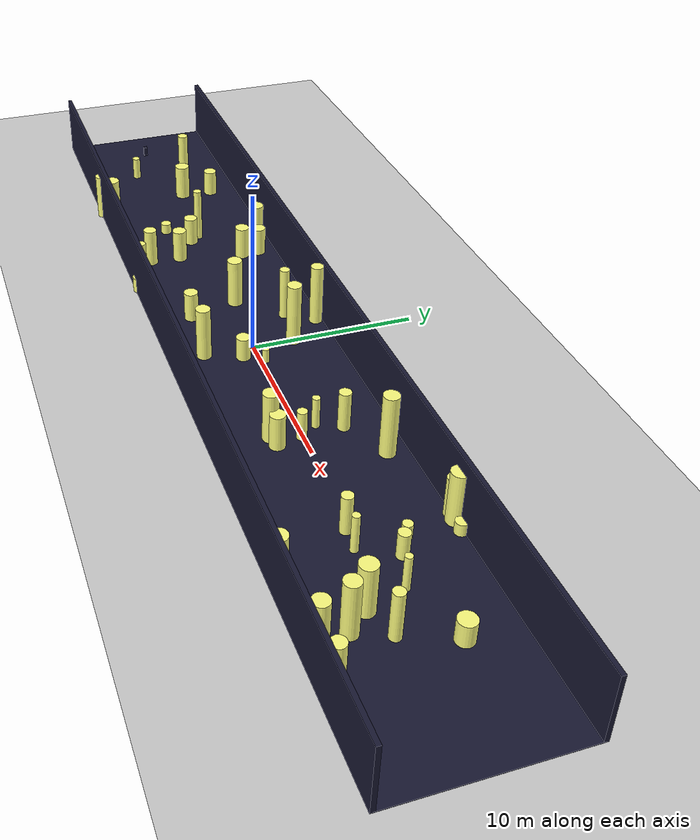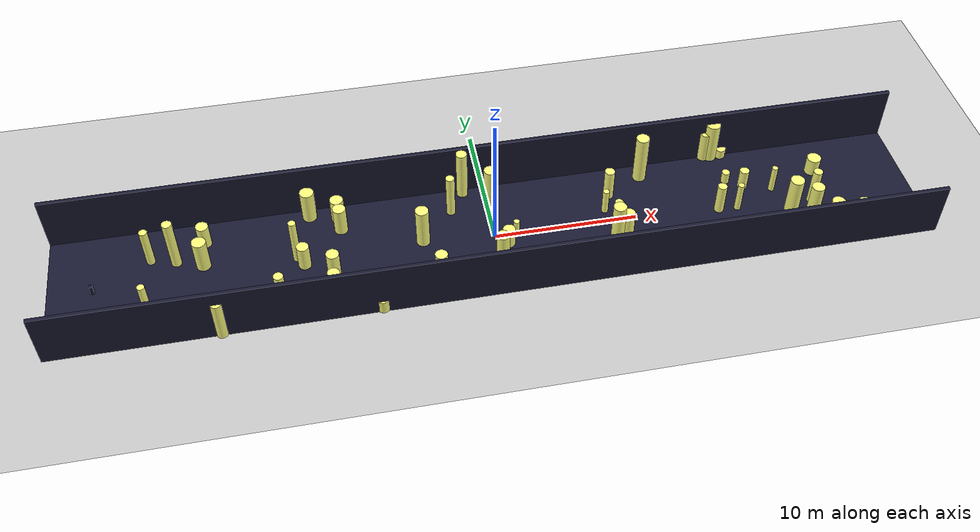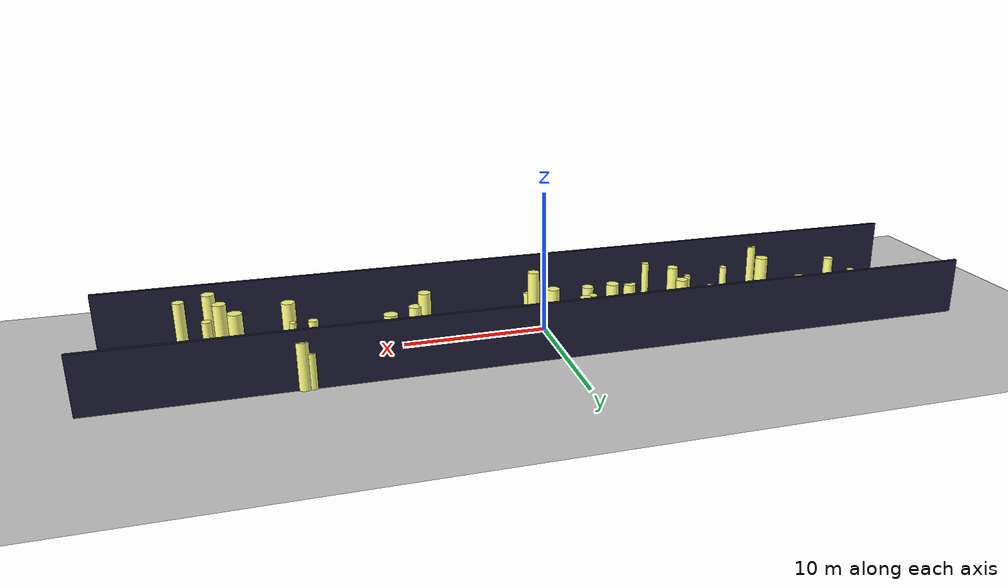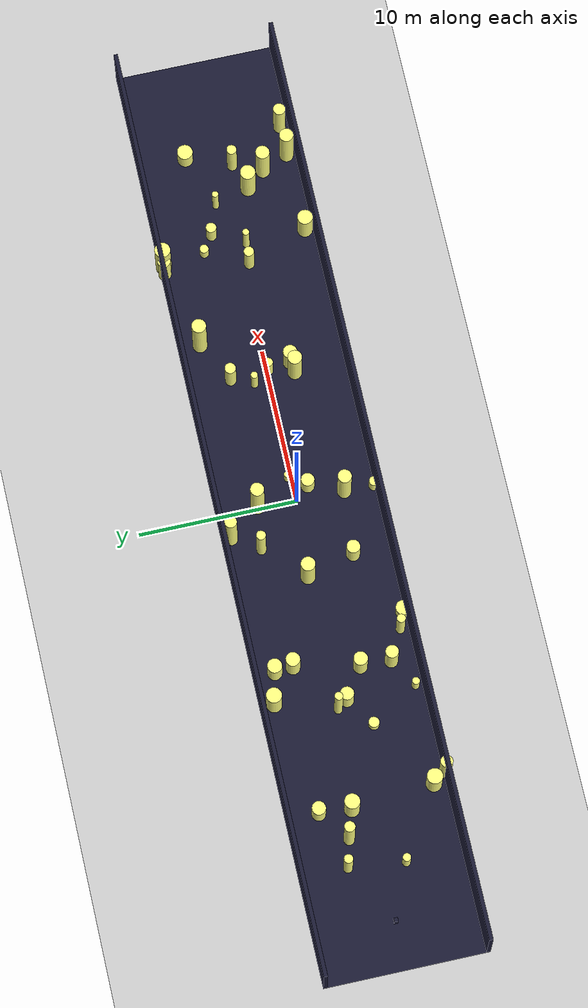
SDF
<?xml version="1.0"?>
<sdf version="1.4">
  <world name="default">
    <gui>
      <camera name="user_camera">
        <pose>-20 -30 40 0 0.66 0.83</pose>
      </camera>
    </gui>
    <include>
      <uri>model://ground_plane</uri>
    </include>
    <include>
      <uri>model://sun</uri>
    </include>
    <scene>
      <shadows>0</shadows>
    </scene>
    <model name="forest">
      <static>true</static>
      <link name="cylinder0">
        <pose>-10.316566731697213 2.5775636685798595 1.078666427885016 0 0 0 </pose>
        <visual name="visual">
          <geometry>
            <cylinder>
              <radius>0.44967204013859363</radius>
              <length>2.157332855770032</length>
            </cylinder>
          </geometry>
          <material>
            <ambient>0.6 0.6 0.6 1</ambient>
            <diffuse>1 1 0.5 1</diffuse>
            <specular>0 0 0</specular>
            <emissive>0 0 0 1</emissive>
          </material>
        </visual>
        <collision name="collision">
          <geometry>
            <cylinder>
              <radius>0.44967204013859363</radius>
              <length>2.157332855770032</length>
            </cylinder>
          </geometry>
          <max_contacts>0</max_contacts>
        </collision>
      </link>
      <link name="cylinder1">
        <pose>8.668529007671374 -0.09326250588529916 0.9110988132144789 0 0 0 </pose>
        <visual name="visual">
          <geometry>
            <cylinder>
              <radius>0.29104572256328487</radius>
              <length>1.8221976264289579</length>
            </cylinder>
          </geometry>
          <material>
            <ambient>0.6 0.6 0.6 1</ambient>
            <diffuse>1 1 0.5 1</diffuse>
            <specular>0 0 0</specular>
            <emissive>0 0 0 1</emissive>
          </material>
        </visual>
        <collision name="collision">
          <geometry>
            <cylinder>
              <radius>0.29104572256328487</radius>
              <length>1.8221976264289579</length>
            </cylinder>
          </geometry>
          <max_contacts>0</max_contacts>
        </collision>
      </link>
      <link name="cylinder2">
        <pose>22.547265370313895 -4.34868033882248 1.7497839510676827 0 0 0 </pose>
        <visual name="visual">
          <geometry>
            <cylinder>
              <radius>0.44433691289763066</radius>
              <length>3.4995679021353654</length>
            </cylinder>
          </geometry>
          <material>
            <ambient>0.6 0.6 0.6 1</ambient>
            <diffuse>1 1 0.5 1</diffuse>
            <specular>0 0 0</specular>
            <emissive>0 0 0 1</emissive>
          </material>
        </visual>
        <collision name="collision">
          <geometry>
            <cylinder>
              <radius>0.44433691289763066</radius>
              <length>3.4995679021353654</length>
            </cylinder>
          </geometry>
          <max_contacts>0</max_contacts>
        </collision>
      </link>
      <link name="cylinder3">
        <pose>-2.599174663075271 2.83698610684349 1.6803450122999335 0 0 0 </pose>
        <visual name="visual">
          <geometry>
            <cylinder>
              <radius>0.30045205482047166</radius>
              <length>3.360690024599867</length>
            </cylinder>
          </geometry>
          <material>
            <ambient>0.6 0.6 0.6 1</ambient>
            <diffuse>1 1 0.5 1</diffuse>
            <specular>0 0 0</specular>
            <emissive>0 0 0 1</emissive>
          </material>
        </visual>
        <collision name="collision">
          <geometry>
            <cylinder>
              <radius>0.30045205482047166</radius>
              <length>3.360690024599867</length>
            </cylinder>
          </geometry>
          <max_contacts>0</max_contacts>
        </collision>
      </link>
      <link name="cylinder4">
        <pose>-19.565915942473094 3.0474721258093176 0.8862405152047648 0 0 0 </pose>
        <visual name="visual">
          <geometry>
            <cylinder>
              <radius>0.4329847621168335</radius>
              <length>1.7724810304095295</length>
            </cylinder>
          </geometry>
          <material>
            <ambient>0.6 0.6 0.6 1</ambient>
            <diffuse>1 1 0.5 1</diffuse>
            <specular>0 0 0</specular>
            <emissive>0 0 0 1</emissive>
          </material>
        </visual>
        <collision name="collision">
          <geometry>
            <cylinder>
              <radius>0.4329847621168335</radius>
              <length>1.7724810304095295</length>
            </cylinder>
          </geometry>
          <max_contacts>0</max_contacts>
        </collision>
      </link>
      <link name="cylinder5">
        <pose>17.206558939826508 -0.5645370079336409 1.1529184274352597 0 0 0 </pose>
        <visual name="visual">
          <geometry>
            <cylinder>
              <radius>0.21622927189896674</radius>
              <length>2.3058368548705195</length>
            </cylinder>
          </geometry>
          <material>
            <ambient>0.6 0.6 0.6 1</ambient>
            <diffuse>1 1 0.5 1</diffuse>
            <specular>0 0 0</specular>
            <emissive>0 0 0 1</emissive>
          </material>
        </visual>
        <collision name="collision">
          <geometry>
            <cylinder>
              <radius>0.21622927189896674</radius>
              <length>2.3058368548705195</length>
            </cylinder>
          </geometry>
          <max_contacts>0</max_contacts>
        </collision>
      </link>
      <link name="cylinder6">
        <pose>-4.917327672397054 0.42003232697163284 1.558526704027693 0 0 0 </pose>
        <visual name="visual">
          <geometry>
            <cylinder>
              <radius>0.4543481166086107</radius>
              <length>3.117053408055386</length>
            </cylinder>
          </geometry>
          <material>
            <ambient>0.6 0.6 0.6 1</ambient>
            <diffuse>1 1 0.5 1</diffuse>
            <specular>0 0 0</specular>
            <emissive>0 0 0 1</emissive>
          </material>
        </visual>
        <collision name="collision">
          <geometry>
            <cylinder>
              <radius>0.4543481166086107</radius>
              <length>3.117053408055386</length>
            </cylinder>
          </geometry>
          <max_contacts>0</max_contacts>
        </collision>
      </link>
      <link name="cylinder7">
        <pose>20.16261422978085 0.7613990138977549 1.0708264691679408 0 0 0 </pose>
        <visual name="visual">
          <geometry>
            <cylinder>
              <radius>0.2034598654079142</radius>
              <length>2.1416529383358816</length>
            </cylinder>
          </geometry>
          <material>
            <ambient>0.6 0.6 0.6 1</ambient>
            <diffuse>1 1 0.5 1</diffuse>
            <specular>0 0 0</specular>
            <emissive>0 0 0 1</emissive>
          </material>
        </visual>
        <collision name="collision">
          <geometry>
            <cylinder>
              <radius>0.2034598654079142</radius>
              <length>2.1416529383358816</length>
            </cylinder>
          </geometry>
          <max_contacts>0</max_contacts>
        </collision>
      </link>
      <link name="cylinder8">
        <pose>8.930649991744097 -1.5490371389218005 1.0884455812674019 0 0 0 </pose>
        <visual name="visual">
          <geometry>
            <cylinder>
              <radius>0.44533025122765835</radius>
              <length>2.1768911625348037</length>
            </cylinder>
          </geometry>
          <material>
            <ambient>0.6 0.6 0.6 1</ambient>
            <diffuse>1 1 0.5 1</diffuse>
            <specular>0 0 0</specular>
            <emissive>0 0 0 1</emissive>
          </material>
        </visual>
        <collision name="collision">
          <geometry>
            <cylinder>
              <radius>0.44533025122765835</radius>
              <length>2.1768911625348037</length>
            </cylinder>
          </geometry>
          <max_contacts>0</max_contacts>
        </collision>
      </link>
      <link name="cylinder9">
        <pose>-9.38529119967953 -4.366331584958429 1.3448369178150306 0 0 0 </pose>
        <visual name="visual">
          <geometry>
            <cylinder>
              <radius>0.2702699678972586</radius>
              <length>2.689673835630061</length>
            </cylinder>
          </geometry>
          <material>
            <ambient>0.6 0.6 0.6 1</ambient>
            <diffuse>1 1 0.5 1</diffuse>
            <specular>0 0 0</specular>
            <emissive>0 0 0 1</emissive>
          </material>
        </visual>
        <collision name="collision">
          <geometry>
            <cylinder>
              <radius>0.2702699678972586</radius>
              <length>2.689673835630061</length>
            </cylinder>
          </geometry>
          <max_contacts>0</max_contacts>
        </collision>
      </link>
      <link name="cylinder10">
        <pose>21.785906315387912 -2.630112548244589 0.7026847913110315 0 0 0 </pose>
        <visual name="visual">
          <geometry>
            <cylinder>
              <radius>0.3418374910625036</radius>
              <length>1.405369582622063</length>
            </cylinder>
          </geometry>
          <material>
            <ambient>0.6 0.6 0.6 1</ambient>
            <diffuse>1 1 0.5 1</diffuse>
            <specular>0 0 0</specular>
            <emissive>0 0 0 1</emissive>
          </material>
        </visual>
        <collision name="collision">
          <geometry>
            <cylinder>
              <radius>0.3418374910625036</radius>
              <length>1.405369582622063</length>
            </cylinder>
          </geometry>
          <max_contacts>0</max_contacts>
        </collision>
      </link>
      <link name="cylinder11">
        <pose>-11.301748242846694 -1.5206114560220598 0.3145789824836943 0 0 0 </pose>
        <visual name="visual">
          <geometry>
            <cylinder>
              <radius>0.25054294470113136</radius>
              <length>0.6291579649673886</length>
            </cylinder>
          </geometry>
          <material>
            <ambient>0.6 0.6 0.6 1</ambient>
            <diffuse>1 1 0.5 1</diffuse>
            <specular>0 0 0</specular>
            <emissive>0 0 0 1</emissive>
          </material>
        </visual>
        <collision name="collision">
          <geometry>
            <cylinder>
              <radius>0.25054294470113136</radius>
              <length>0.6291579649673886</length>
            </cylinder>
          </geometry>
          <max_contacts>0</max_contacts>
        </collision>
      </link>
      <link name="cylinder12">
        <pose>-0.06298509844897993 -4.827632712401825 0.5600978412357575 0 0 0 </pose>
        <visual name="visual">
          <geometry>
            <cylinder>
              <radius>0.29530544476982584</radius>
              <length>1.120195682471515</length>
            </cylinder>
          </geometry>
          <material>
            <ambient>0.6 0.6 0.6 1</ambient>
            <diffuse>1 1 0.5 1</diffuse>
            <specular>0 0 0</specular>
            <emissive>0 0 0 1</emissive>
          </material>
        </visual>
        <collision name="collision">
          <geometry>
            <cylinder>
              <radius>0.29530544476982584</radius>
              <length>1.120195682471515</length>
            </cylinder>
          </geometry>
          <max_contacts>0</max_contacts>
        </collision>
      </link>
      <link name="cylinder13">
        <pose>-13.506514832737343 0.4634382577562075 1.7831611392127953 0 0 0 </pose>
        <visual name="visual">
          <geometry>
            <cylinder>
              <radius>0.25538302278779307</radius>
              <length>3.5663222784255906</length>
            </cylinder>
          </geometry>
          <material>
            <ambient>0.6 0.6 0.6 1</ambient>
            <diffuse>1 1 0.5 1</diffuse>
            <specular>0 0 0</specular>
            <emissive>0 0 0 1</emissive>
          </material>
        </visual>
        <collision name="collision">
          <geometry>
            <cylinder>
              <radius>0.25538302278779307</radius>
              <length>3.5663222784255906</length>
            </cylinder>
          </geometry>
          <max_contacts>0</max_contacts>
        </collision>
      </link>
      <link name="cylinder14">
        <pose>-10.408807901734695 3.7261703488506352 0.9406027230277274 0 0 0 </pose>
        <visual name="visual">
          <geometry>
            <cylinder>
              <radius>0.4593459646037949</radius>
              <length>1.8812054460554548</length>
            </cylinder>
          </geometry>
          <material>
            <ambient>0.6 0.6 0.6 1</ambient>
            <diffuse>1 1 0.5 1</diffuse>
            <specular>0 0 0</specular>
            <emissive>0 0 0 1</emissive>
          </material>
        </visual>
        <collision name="collision">
          <geometry>
            <cylinder>
              <radius>0.4593459646037949</radius>
              <length>1.8812054460554548</length>
            </cylinder>
          </geometry>
          <max_contacts>0</max_contacts>
        </collision>
      </link>
      <link name="cylinder15">
        <pose>8.22058517721954 -1.6892289282369264 1.535806653439702 0 0 0 </pose>
        <visual name="visual">
          <geometry>
            <cylinder>
              <radius>0.451128998491961</radius>
              <length>3.071613306879404</length>
            </cylinder>
          </geometry>
          <material>
            <ambient>0.6 0.6 0.6 1</ambient>
            <diffuse>1 1 0.5 1</diffuse>
            <specular>0 0 0</specular>
            <emissive>0 0 0 1</emissive>
          </material>
        </visual>
        <collision name="collision">
          <geometry>
            <cylinder>
              <radius>0.451128998491961</radius>
              <length>3.071613306879404</length>
            </cylinder>
          </geometry>
          <max_contacts>0</max_contacts>
        </collision>
      </link>
      <link name="cylinder16">
        <pose>1.5592289787219613 0.27233425066797246 0.469802505534674 0 0 0 </pose>
        <visual name="visual">
          <geometry>
            <cylinder>
              <radius>0.20791524571027908</radius>
              <length>0.939605011069348</length>
            </cylinder>
          </geometry>
          <material>
            <ambient>0.6 0.6 0.6 1</ambient>
            <diffuse>1 1 0.5 1</diffuse>
            <specular>0 0 0</specular>
            <emissive>0 0 0 1</emissive>
          </material>
        </visual>
        <collision name="collision">
          <geometry>
            <cylinder>
              <radius>0.20791524571027908</radius>
              <length>0.939605011069348</length>
            </cylinder>
          </geometry>
          <max_contacts>0</max_contacts>
        </collision>
      </link>
      <link name="cylinder17">
        <pose>-13.044261387039318 -0.18192598093851053 0.9466271424008768 0 0 0 </pose>
        <visual name="visual">
          <geometry>
            <cylinder>
              <radius>0.424635826374445</radius>
              <length>1.8932542848017535</length>
            </cylinder>
          </geometry>
          <material>
            <ambient>0.6 0.6 0.6 1</ambient>
            <diffuse>1 1 0.5 1</diffuse>
            <specular>0 0 0</specular>
            <emissive>0 0 0 1</emissive>
          </material>
        </visual>
        <collision name="collision">
          <geometry>
            <cylinder>
              <radius>0.424635826374445</radius>
              <length>1.8932542848017535</length>
            </cylinder>
          </geometry>
          <max_contacts>0</max_contacts>
        </collision>
      </link>
      <link name="cylinder18">
        <pose>-12.34886988353111 4.197168153049301 1.245327610985447 0 0 0 </pose>
        <visual name="visual">
          <geometry>
            <cylinder>
              <radius>0.488691261324792</radius>
              <length>2.490655221970894</length>
            </cylinder>
          </geometry>
          <material>
            <ambient>0.6 0.6 0.6 1</ambient>
            <diffuse>1 1 0.5 1</diffuse>
            <specular>0 0 0</specular>
            <emissive>0 0 0 1</emissive>
          </material>
        </visual>
        <collision name="collision">
          <geometry>
            <cylinder>
              <radius>0.488691261324792</radius>
              <length>2.490655221970894</length>
            </cylinder>
          </geometry>
          <max_contacts>0</max_contacts>
        </collision>
      </link>
      <link name="cylinder19">
        <pose>17.63698650259353 4.761879528109812 0.38980206235176107 0 0 0 </pose>
        <visual name="visual">
          <geometry>
            <cylinder>
              <radius>0.3607688565292737</radius>
              <length>0.7796041247035221</length>
            </cylinder>
          </geometry>
          <material>
            <ambient>0.6 0.6 0.6 1</ambient>
            <diffuse>1 1 0.5 1</diffuse>
            <specular>0 0 0</specular>
            <emissive>0 0 0 1</emissive>
          </material>
        </visual>
        <collision name="collision">
          <geometry>
            <cylinder>
              <radius>0.3607688565292737</radius>
              <length>0.7796041247035221</length>
            </cylinder>
          </geometry>
          <max_contacts>0</max_contacts>
        </collision>
      </link>
      <link name="cylinder20">
        <pose>0.12249428948661745 2.473143944868066 1.9858127590597097 0 0 0 </pose>
        <visual name="visual">
          <geometry>
            <cylinder>
              <radius>0.4314754799998098</radius>
              <length>3.9716255181194193</length>
            </cylinder>
          </geometry>
          <material>
            <ambient>0.6 0.6 0.6 1</ambient>
            <diffuse>1 1 0.5 1</diffuse>
            <specular>0 0 0</specular>
            <emissive>0 0 0 1</emissive>
          </material>
        </visual>
        <collision name="collision">
          <geometry>
            <cylinder>
              <radius>0.4314754799998098</radius>
              <length>3.9716255181194193</length>
            </cylinder>
          </geometry>
          <max_contacts>0</max_contacts>
        </collision>
      </link>
      <link name="cylinder21">
        <pose>-14.876954363624156 -1.445110699352694 0.37283934727905804 0 0 0 </pose>
        <visual name="visual">
          <geometry>
            <cylinder>
              <radius>0.3379619879512832</radius>
              <length>0.7456786945581161</length>
            </cylinder>
          </geometry>
          <material>
            <ambient>0.6 0.6 0.6 1</ambient>
            <diffuse>1 1 0.5 1</diffuse>
            <specular>0 0 0</specular>
            <emissive>0 0 0 1</emissive>
          </material>
        </visual>
        <collision name="collision">
          <geometry>
            <cylinder>
              <radius>0.3379619879512832</radius>
              <length>0.7456786945581161</length>
            </cylinder>
          </geometry>
          <max_contacts>0</max_contacts>
        </collision>
      </link>
      <link name="cylinder22">
        <pose>17.172144987819834 2.139814234050185 0.48094814135201924 0 0 0 </pose>
        <visual name="visual">
          <geometry>
            <cylinder>
              <radius>0.283384812756688</radius>
              <length>0.9618962827040385</length>
            </cylinder>
          </geometry>
          <material>
            <ambient>0.6 0.6 0.6 1</ambient>
            <diffuse>1 1 0.5 1</diffuse>
            <specular>0 0 0</specular>
            <emissive>0 0 0 1</emissive>
          </material>
        </visual>
        <collision name="collision">
          <geometry>
            <cylinder>
              <radius>0.283384812756688</radius>
              <length>0.9618962827040385</length>
            </cylinder>
          </geometry>
          <max_contacts>0</max_contacts>
        </collision>
      </link>
      <link name="cylinder23">
        <pose>15.883812160426366 -0.4682463826206673 1.1758806212641169 0 0 0 </pose>
        <visual name="visual">
          <geometry>
            <cylinder>
              <radius>0.3249549195691741</radius>
              <length>2.3517612425282337</length>
            </cylinder>
          </geometry>
          <material>
            <ambient>0.6 0.6 0.6 1</ambient>
            <diffuse>1 1 0.5 1</diffuse>
            <specular>0 0 0</specular>
            <emissive>0 0 0 1</emissive>
          </material>
        </visual>
        <collision name="collision">
          <geometry>
            <cylinder>
              <radius>0.3249549195691741</radius>
              <length>2.3517612425282337</length>
            </cylinder>
          </geometry>
          <max_contacts>0</max_contacts>
        </collision>
      </link>
      <link name="cylinder24">
        <pose>-23.610099728488223 -1.4483239911007728 0.7901004299220521 0 0 0 </pose>
        <visual name="visual">
          <geometry>
            <cylinder>
              <radius>0.25656810245608663</radius>
              <length>1.5802008598441042</length>
            </cylinder>
          </geometry>
          <material>
            <ambient>0.6 0.6 0.6 1</ambient>
            <diffuse>1 1 0.5 1</diffuse>
            <specular>0 0 0</specular>
            <emissive>0 0 0 1</emissive>
          </material>
        </visual>
        <collision name="collision">
          <geometry>
            <cylinder>
              <radius>0.25656810245608663</radius>
              <length>1.5802008598441042</length>
            </cylinder>
          </geometry>
          <max_contacts>0</max_contacts>
        </collision>
      </link>
      <link name="cylinder25">
        <pose>18.238107838870505 1.4542547465781315 0.7907835805972069 0 0 0 </pose>
        <visual name="visual">
          <geometry>
            <cylinder>
              <radius>0.3335389130553891</radius>
              <length>1.5815671611944138</length>
            </cylinder>
          </geometry>
          <material>
            <ambient>0.6 0.6 0.6 1</ambient>
            <diffuse>1 1 0.5 1</diffuse>
            <specular>0 0 0</specular>
            <emissive>0 0 0 1</emissive>
          </material>
        </visual>
        <collision name="collision">
          <geometry>
            <cylinder>
              <radius>0.3335389130553891</radius>
              <length>1.5815671611944138</length>
            </cylinder>
          </geometry>
          <max_contacts>0</max_contacts>
        </collision>
      </link>
      <link name="cylinder26">
        <pose>7.9929221321673865 0.9333535420744781 0.9841151219818415 0 0 0 </pose>
        <visual name="visual">
          <geometry>
            <cylinder>
              <radius>0.22211549441341485</radius>
              <length>1.968230243963683</length>
            </cylinder>
          </geometry>
          <material>
            <ambient>0.6 0.6 0.6 1</ambient>
            <diffuse>1 1 0.5 1</diffuse>
            <specular>0 0 0</specular>
            <emissive>0 0 0 1</emissive>
          </material>
        </visual>
        <collision name="collision">
          <geometry>
            <cylinder>
              <radius>0.22211549441341485</radius>
              <length>1.968230243963683</length>
            </cylinder>
          </geometry>
          <max_contacts>0</max_contacts>
        </collision>
      </link>
      <link name="cylinder27">
        <pose>-19.277917681344988 -4.166295221507628 1.1352653741031147 0 0 0 </pose>
        <visual name="visual">
          <geometry>
            <cylinder>
              <radius>0.4939842305769136</radius>
              <length>2.2705307482062294</length>
            </cylinder>
          </geometry>
          <material>
            <ambient>0.6 0.6 0.6 1</ambient>
            <diffuse>1 1 0.5 1</diffuse>
            <specular>0 0 0</specular>
            <emissive>0 0 0 1</emissive>
          </material>
        </visual>
        <collision name="collision">
          <geometry>
            <cylinder>
              <radius>0.4939842305769136</radius>
              <length>2.2705307482062294</length>
            </cylinder>
          </geometry>
          <max_contacts>0</max_contacts>
        </collision>
      </link>
      <link name="cylinder28">
        <pose>-18.71276494460013 -4.998625165579852 1.5113168791976186 0 0 0 </pose>
        <visual name="visual">
          <geometry>
            <cylinder>
              <radius>0.380532285483817</radius>
              <length>3.022633758395237</length>
            </cylinder>
          </geometry>
          <material>
            <ambient>0.6 0.6 0.6 1</ambient>
            <diffuse>1 1 0.5 1</diffuse>
            <specular>0 0 0</specular>
            <emissive>0 0 0 1</emissive>
          </material>
        </visual>
        <collision name="collision">
          <geometry>
            <cylinder>
              <radius>0.380532285483817</radius>
              <length>3.022633758395237</length>
            </cylinder>
          </geometry>
          <max_contacts>0</max_contacts>
        </collision>
      </link>
      <link name="cylinder29">
        <pose>-1.5223999683344829 4.4874975012316565 1.9512526320705492 0 0 0 </pose>
        <visual name="visual">
          <geometry>
            <cylinder>
              <radius>0.38450971087930275</radius>
              <length>3.9025052641410984</length>
            </cylinder>
          </geometry>
          <material>
            <ambient>0.6 0.6 0.6 1</ambient>
            <diffuse>1 1 0.5 1</diffuse>
            <specular>0 0 0</specular>
            <emissive>0 0 0 1</emissive>
          </material>
        </visual>
        <collision name="collision">
          <geometry>
            <cylinder>
              <radius>0.38450971087930275</radius>
              <length>3.9025052641410984</length>
            </cylinder>
          </geometry>
          <max_contacts>0</max_contacts>
        </collision>
      </link>
      <link name="cylinder30">
        <pose>-19.72815089877252 1.0337572179136458 1.1974018235134798 0 0 0 </pose>
        <visual name="visual">
          <geometry>
            <cylinder>
              <radius>0.48108944345638377</radius>
              <length>2.3948036470269596</length>
            </cylinder>
          </geometry>
          <material>
            <ambient>0.6 0.6 0.6 1</ambient>
            <diffuse>1 1 0.5 1</diffuse>
            <specular>0 0 0</specular>
            <emissive>0 0 0 1</emissive>
          </material>
        </visual>
        <collision name="collision">
          <geometry>
            <cylinder>
              <radius>0.48108944345638377</radius>
              <length>2.3948036470269596</length>
            </cylinder>
          </geometry>
          <max_contacts>0</max_contacts>
        </collision>
      </link>
      <link name="cylinder31">
        <pose>16.37222994482947 4.85302246831022 1.2024351622350844 0 0 0 </pose>
        <visual name="visual">
          <geometry>
            <cylinder>
              <radius>0.40188066536915595</radius>
              <length>2.404870324470169</length>
            </cylinder>
          </geometry>
          <material>
            <ambient>0.6 0.6 0.6 1</ambient>
            <diffuse>1 1 0.5 1</diffuse>
            <specular>0 0 0</specular>
            <emissive>0 0 0 1</emissive>
          </material>
        </visual>
        <collision name="collision">
          <geometry>
            <cylinder>
              <radius>0.40188066536915595</radius>
              <length>2.404870324470169</length>
            </cylinder>
          </geometry>
          <max_contacts>0</max_contacts>
        </collision>
      </link>
      <link name="cylinder32">
        <pose>20.82497488131102 -1.4864418654487341 1.5050400118199798 0 0 0 </pose>
        <visual name="visual">
          <geometry>
            <cylinder>
              <radius>0.48434703440938387</radius>
              <length>3.0100800236399596</length>
            </cylinder>
          </geometry>
          <material>
            <ambient>0.6 0.6 0.6 1</ambient>
            <diffuse>1 1 0.5 1</diffuse>
            <specular>0 0 0</specular>
            <emissive>0 0 0 1</emissive>
          </material>
        </visual>
        <collision name="collision">
          <geometry>
            <cylinder>
              <radius>0.48434703440938387</radius>
              <length>3.0100800236399596</length>
            </cylinder>
          </geometry>
          <max_contacts>0</max_contacts>
        </collision>
      </link>
      <link name="cylinder33">
        <pose>22.578551939249948 -0.832384387675587 1.4392730583492788 0 0 0 </pose>
        <visual name="visual">
          <geometry>
            <cylinder>
              <radius>0.3165715910708474</radius>
              <length>2.8785461166985575</length>
            </cylinder>
          </geometry>
          <material>
            <ambient>0.6 0.6 0.6 1</ambient>
            <diffuse>1 1 0.5 1</diffuse>
            <specular>0 0 0</specular>
            <emissive>0 0 0 1</emissive>
          </material>
        </visual>
        <collision name="collision">
          <geometry>
            <cylinder>
              <radius>0.3165715910708474</radius>
              <length>2.8785461166985575</length>
            </cylinder>
          </geometry>
          <max_contacts>0</max_contacts>
        </collision>
      </link>
      <link name="cylinder34">
        <pose>24.498570276608866 -4.330450349956301 1.5605441831611282 0 0 0 </pose>
        <visual name="visual">
          <geometry>
            <cylinder>
              <radius>0.3873428230577679</radius>
              <length>3.1210883663222564</length>
            </cylinder>
          </geometry>
          <material>
            <ambient>0.6 0.6 0.6 1</ambient>
            <diffuse>1 1 0.5 1</diffuse>
            <specular>0 0 0</specular>
            <emissive>0 0 0 1</emissive>
          </material>
        </visual>
        <collision name="collision">
          <geometry>
            <cylinder>
              <radius>0.3873428230577679</radius>
              <length>3.1210883663222564</length>
            </cylinder>
          </geometry>
          <max_contacts>0</max_contacts>
        </collision>
      </link>
      <link name="cylinder35">
        <pose>-23.209834023476677 2.063765410172559 1.4794433112535756 0 0 0 </pose>
        <visual name="visual">
          <geometry>
            <cylinder>
              <radius>0.2823595185436728</radius>
              <length>2.9588866225071513</length>
            </cylinder>
          </geometry>
          <material>
            <ambient>0.6 0.6 0.6 1</ambient>
            <diffuse>1 1 0.5 1</diffuse>
            <specular>0 0 0</specular>
            <emissive>0 0 0 1</emissive>
          </material>
        </visual>
        <collision name="collision">
          <geometry>
            <cylinder>
              <radius>0.2823595185436728</radius>
              <length>2.9588866225071513</length>
            </cylinder>
          </geometry>
          <max_contacts>0</max_contacts>
        </collision>
      </link>
      <link name="cylinder36">
        <pose>-11.239875912110092 -3.375647355283241 1.2453829361668354 0 0 0 </pose>
        <visual name="visual">
          <geometry>
            <cylinder>
              <radius>0.4081866540659527</radius>
              <length>2.4907658723336707</length>
            </cylinder>
          </geometry>
          <material>
            <ambient>0.6 0.6 0.6 1</ambient>
            <diffuse>1 1 0.5 1</diffuse>
            <specular>0 0 0</specular>
            <emissive>0 0 0 1</emissive>
          </material>
        </visual>
        <collision name="collision">
          <geometry>
            <cylinder>
              <radius>0.4081866540659527</radius>
              <length>2.4907658723336707</length>
            </cylinder>
          </geometry>
          <max_contacts>0</max_contacts>
        </collision>
      </link>
      <link name="cylinder37">
        <pose>21.80950578311665 -2.6512380272621483 1.6661744461148071 0 0 0 </pose>
        <visual name="visual">
          <geometry>
            <cylinder>
              <radius>0.44584984159459806</radius>
              <length>3.3323488922296143</length>
            </cylinder>
          </geometry>
          <material>
            <ambient>0.6 0.6 0.6 1</ambient>
            <diffuse>1 1 0.5 1</diffuse>
            <specular>0 0 0</specular>
            <emissive>0 0 0 1</emissive>
          </material>
        </visual>
        <collision name="collision">
          <geometry>
            <cylinder>
              <radius>0.44584984159459806</radius>
              <length>3.3323488922296143</length>
            </cylinder>
          </geometry>
          <max_contacts>0</max_contacts>
        </collision>
      </link>
      <link name="cylinder38">
        <pose>-8.306435361998588 -4.78988544930015 0.48179602700947555 0 0 0 </pose>
        <visual name="visual">
          <geometry>
            <cylinder>
              <radius>0.4713067400761571</radius>
              <length>0.9635920540189511</length>
            </cylinder>
          </geometry>
          <material>
            <ambient>0.6 0.6 0.6 1</ambient>
            <diffuse>1 1 0.5 1</diffuse>
            <specular>0 0 0</specular>
            <emissive>0 0 0 1</emissive>
          </material>
        </visual>
        <collision name="collision">
          <geometry>
            <cylinder>
              <radius>0.4713067400761571</radius>
              <length>0.9635920540189511</length>
            </cylinder>
          </geometry>
          <max_contacts>0</max_contacts>
        </collision>
      </link>
      <link name="cylinder39">
        <pose>-21.513730583143452 1.6099895390883292 1.9392435473872698 0 0 0 </pose>
        <visual name="visual">
          <geometry>
            <cylinder>
              <radius>0.33654685608865087</radius>
              <length>3.8784870947745396</length>
            </cylinder>
          </geometry>
          <material>
            <ambient>0.6 0.6 0.6 1</ambient>
            <diffuse>1 1 0.5 1</diffuse>
            <specular>0 0 0</specular>
            <emissive>0 0 0 1</emissive>
          </material>
        </visual>
        <collision name="collision">
          <geometry>
            <cylinder>
              <radius>0.33654685608865087</radius>
              <length>3.8784870947745396</length>
            </cylinder>
          </geometry>
          <max_contacts>0</max_contacts>
        </collision>
      </link>
      <link name="cylinder40">
        <pose>-11.16228758953155 -1.4477598981570718 1.0811468813706644 0 0 0 </pose>
        <visual name="visual">
          <geometry>
            <cylinder>
              <radius>0.44030058911319847</radius>
              <length>2.162293762741329</length>
            </cylinder>
          </geometry>
          <material>
            <ambient>0.6 0.6 0.6 1</ambient>
            <diffuse>1 1 0.5 1</diffuse>
            <specular>0 0 0</specular>
            <emissive>0 0 0 1</emissive>
          </material>
        </visual>
        <collision name="collision">
          <geometry>
            <cylinder>
              <radius>0.44030058911319847</radius>
              <length>2.162293762741329</length>
            </cylinder>
          </geometry>
          <max_contacts>0</max_contacts>
        </collision>
      </link>
      <link name="cylinder41">
        <pose>0.803626831756965 -0.8420353396688798 0.7473310506111538 0 0 0 </pose>
        <visual name="visual">
          <geometry>
            <cylinder>
              <radius>0.4218006392494995</radius>
              <length>1.4946621012223076</length>
            </cylinder>
          </geometry>
          <material>
            <ambient>0.6 0.6 0.6 1</ambient>
            <diffuse>1 1 0.5 1</diffuse>
            <specular>0 0 0</specular>
            <emissive>0 0 0 1</emissive>
          </material>
        </visual>
        <collision name="collision">
          <geometry>
            <cylinder>
              <radius>0.4218006392494995</radius>
              <length>1.4946621012223076</length>
            </cylinder>
          </geometry>
          <max_contacts>0</max_contacts>
        </collision>
      </link>
      <link name="cylinder42">
        <pose>16.83863369237732 4.825658212477773 1.5949659549765929 0 0 0 </pose>
        <visual name="visual">
          <geometry>
            <cylinder>
              <radius>0.4972965049668556</radius>
              <length>3.1899319099531858</length>
            </cylinder>
          </geometry>
          <material>
            <ambient>0.6 0.6 0.6 1</ambient>
            <diffuse>1 1 0.5 1</diffuse>
            <specular>0 0 0</specular>
            <emissive>0 0 0 1</emissive>
          </material>
        </visual>
        <collision name="collision">
          <geometry>
            <cylinder>
              <radius>0.4972965049668556</radius>
              <length>3.1899319099531858</length>
            </cylinder>
          </geometry>
          <max_contacts>0</max_contacts>
        </collision>
      </link>
      <link name="cylinder43">
        <pose>23.650057039062297 1.9765993372583726 0.6809544234196739 0 0 0 </pose>
        <visual name="visual">
          <geometry>
            <cylinder>
              <radius>0.49389833539867095</radius>
              <length>1.3619088468393479</length>
            </cylinder>
          </geometry>
          <material>
            <ambient>0.6 0.6 0.6 1</ambient>
            <diffuse>1 1 0.5 1</diffuse>
            <specular>0 0 0</specular>
            <emissive>0 0 0 1</emissive>
          </material>
        </visual>
        <collision name="collision">
          <geometry>
            <cylinder>
              <radius>0.49389833539867095</radius>
              <length>1.3619088468393479</length>
            </cylinder>
          </geometry>
          <max_contacts>0</max_contacts>
        </collision>
      </link>
      <link name="cylinder44">
        <pose>-4.104905110901441 -2.607600666359854 0.9547609755856505 0 0 0 </pose>
        <visual name="visual">
          <geometry>
            <cylinder>
              <radius>0.4245661924682712</radius>
              <length>1.909521951171301</length>
            </cylinder>
          </geometry>
          <material>
            <ambient>0.6 0.6 0.6 1</ambient>
            <diffuse>1 1 0.5 1</diffuse>
            <specular>0 0 0</specular>
            <emissive>0 0 0 1</emissive>
          </material>
        </visual>
        <collision name="collision">
          <geometry>
            <cylinder>
              <radius>0.4245661924682712</radius>
              <length>1.909521951171301</length>
            </cylinder>
          </geometry>
          <max_contacts>0</max_contacts>
        </collision>
      </link>
      <link name="cylinder45">
        <pose>17.363830592093606 -4.391858660123042 1.1717108720478389 0 0 0 </pose>
        <visual name="visual">
          <geometry>
            <cylinder>
              <radius>0.4847019235639006</radius>
              <length>2.3434217440956777</length>
            </cylinder>
          </geometry>
          <material>
            <ambient>0.6 0.6 0.6 1</ambient>
            <diffuse>1 1 0.5 1</diffuse>
            <specular>0 0 0</specular>
            <emissive>0 0 0 1</emissive>
          </material>
        </visual>
        <collision name="collision">
          <geometry>
            <cylinder>
              <radius>0.4847019235639006</radius>
              <length>2.3434217440956777</length>
            </cylinder>
          </geometry>
          <max_contacts>0</max_contacts>
        </collision>
      </link>
      <link name="cylinder46">
        <pose>-0.03475429142643094 -2.9733315491579915 1.6668728646202866 0 0 0 </pose>
        <visual name="visual">
          <geometry>
            <cylinder>
              <radius>0.43360310342915465</radius>
              <length>3.333745729240573</length>
            </cylinder>
          </geometry>
          <material>
            <ambient>0.6 0.6 0.6 1</ambient>
            <diffuse>1 1 0.5 1</diffuse>
            <specular>0 0 0</specular>
            <emissive>0 0 0 1</emissive>
          </material>
        </visual>
        <collision name="collision">
          <geometry>
            <cylinder>
              <radius>0.43360310342915465</radius>
              <length>3.333745729240573</length>
            </cylinder>
          </geometry>
          <max_contacts>0</max_contacts>
        </collision>
      </link>
      <link name="cylinder47">
        <pose>8.588679900014832 2.319800376278492 1.2257575860009962 0 0 0 </pose>
        <visual name="visual">
          <geometry>
            <cylinder>
              <radius>0.35198932742907557</radius>
              <length>2.4515151720019923</length>
            </cylinder>
          </geometry>
          <material>
            <ambient>0.6 0.6 0.6 1</ambient>
            <diffuse>1 1 0.5 1</diffuse>
            <specular>0 0 0</specular>
            <emissive>0 0 0 1</emissive>
          </material>
        </visual>
        <collision name="collision">
          <geometry>
            <cylinder>
              <radius>0.35198932742907557</radius>
              <length>2.4515151720019923</length>
            </cylinder>
          </geometry>
          <max_contacts>0</max_contacts>
        </collision>
      </link>
      <link name="cylinder48">
        <pose>11.235078928060375 3.7065518266263346 1.9243227321637633 0 0 0 </pose>
        <visual name="visual">
          <geometry>
            <cylinder>
              <radius>0.45735852638105096</radius>
              <length>3.8486454643275265</length>
            </cylinder>
          </geometry>
          <material>
            <ambient>0.6 0.6 0.6 1</ambient>
            <diffuse>1 1 0.5 1</diffuse>
            <specular>0 0 0</specular>
            <emissive>0 0 0 1</emissive>
          </material>
        </visual>
        <collision name="collision">
          <geometry>
            <cylinder>
              <radius>0.45735852638105096</radius>
              <length>3.8486454643275265</length>
            </cylinder>
          </geometry>
          <max_contacts>0</max_contacts>
        </collision>
      </link>
      <link name="cylinder49">
        <pose>-13.042101333920197 -4.47690458949264 0.6420671614239212 0 0 0 </pose>
        <visual name="visual">
          <geometry>
            <cylinder>
              <radius>0.2355315291581038</radius>
              <length>1.2841343228478423</length>
            </cylinder>
          </geometry>
          <material>
            <ambient>0.6 0.6 0.6 1</ambient>
            <diffuse>1 1 0.5 1</diffuse>
            <specular>0 0 0</specular>
            <emissive>0 0 0 1</emissive>
          </material>
        </visual>
        <collision name="collision">
          <geometry>
            <cylinder>
              <radius>0.2355315291581038</radius>
              <length>1.2841343228478423</length>
            </cylinder>
          </geometry>
          <max_contacts>0</max_contacts>
        </collision>
      </link>
      <link name="cube0">
        <pose>0 5.0 2.0 0 0 0 </pose>
        <visual name="visual">
          <geometry>
            <box>
              <size>60.0 0.25 4.0</size>
            </box>
          </geometry>
          <material>
            <ambient>0.1 0.1 0.1 1</ambient>
            <diffuse>0.1 0.1 0.2 1</diffuse>
            <specular>0 0 0</specular>
            <emissive>0 0 0 1</emissive>
          </material>
        </visual>
        <collision name="collision">
          <geometry>
            <box>
              <size>60.0 0.25 4.0</size>
            </box>
          </geometry>
          <max_contacts>0</max_contacts>
        </collision>
      </link>
      <link name="cube1">
        <pose>0 -5.0 2.0 0 0 0 </pose>
        <visual name="visual">
          <geometry>
            <box>
              <size>60.0 0.25 4.0</size>
            </box>
          </geometry>
          <material>
            <ambient>0.1 0.1 0.1 1</ambient>
            <diffuse>0.1 0.1 0.2 1</diffuse>
            <specular>0 0 0</specular>
            <emissive>0 0 0 1</emissive>
          </material>
        </visual>
        <collision name="collision">
          <geometry>
            <box>
              <size>60.0 0.25 4.0</size>
            </box>
          </geometry>
          <max_contacts>0</max_contacts>
        </collision>
      </link>
      <link name="cube2">
        <pose>0 0 0.03125 0 0 0 </pose>
        <visual name="visual">
          <geometry>
            <box>
              <size>60.0 10 0.0625</size>
            </box>
          </geometry>
          <material>
            <ambient>0.1 0.1 0.1 1</ambient>
            <diffuse>0.1 0.1 0.2 1</diffuse>
            <specular>0 0 0</specular>
            <emissive>0 0 0 1</emissive>
          </material>
        </visual>
        <collision name="collision">
          <geometry>
            <box>
              <size>60.0 10 0.0625</size>
            </box>
          </geometry>
          <max_contacts>0</max_contacts>
        </collision>
      </link>
      <link name="cube3">
        <pose>-27.0 0.0 0.25 0 0 0 </pose>
        <visual name="visual">
          <geometry>
            <box>
              <size>0.25 0.25 1.0</size>
            </box>
          </geometry>
          <material>
            <ambient>0.1 0.1 0.1 1</ambient>
            <diffuse>0.1 0.1 0.2 1</diffuse>
            <specular>0 0 0</specular>
            <emissive>0 0 0 1</emissive>
          </material>
        </visual>
        <collision name="collision">
          <geometry>
            <box>
              <size>0.25 0.25 1.0</size>
            </box>
          </geometry>
          <max_contacts>0</max_contacts>
        </collision>
      </link>
    </model>
    <!-- Physics -->
    <physics name="default_physics" default="0" type="ode">
      <max_step_size>0.004</max_step_size>
      <real_time_factor>1</real_time_factor>
      <real_time_update_rate>250</real_time_update_rate>
      <gravity>0 0 -9.8</gravity>
      <magnetic_field>6e-06 2.3e-05 -4.2e-05</magnetic_field>
      <ode>
        <solver>
          <type>quick</type>
          <iters>1000</iters>
          <sor>1.3</sor>
          <use_dynamic_moi_rescaling>0</use_dynamic_moi_rescaling>
        </solver>
        <constraints>
          <cfm>0</cfm>
          <erp>0.2</erp>
          <contact_max_correcting_vel>100</contact_max_correcting_vel>
          <contact_surface_layer>0.001</contact_surface_layer>
        </constraints>
      </ode>
    </physics>
  </world>
</sdf>
